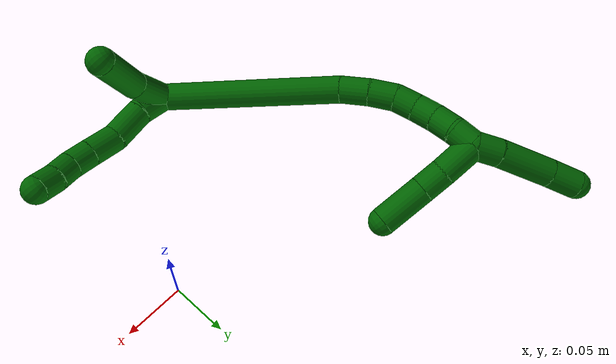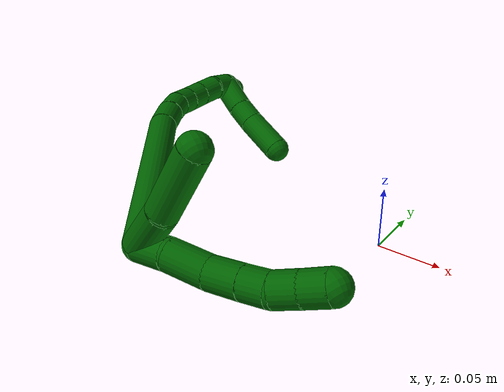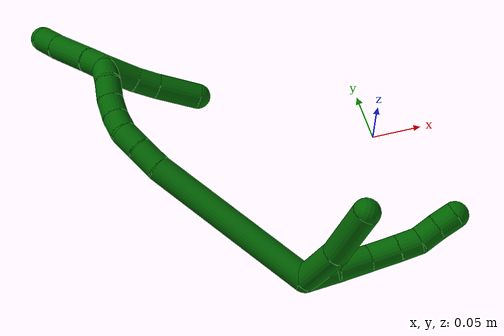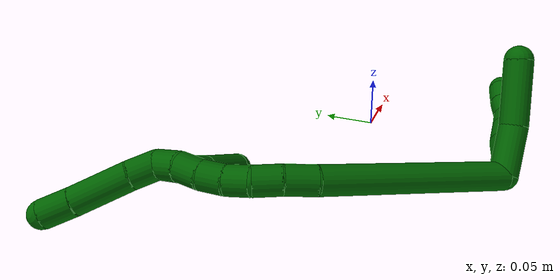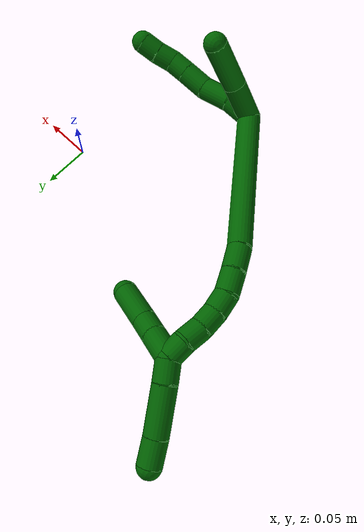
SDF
<sdf version="1.7">
 <world name="default">
  <model name="6">
   <static>0</static>
   <link name="6">
    <collision name="collision-cylinder-e_1_2_8">
     <pose>0.009299 0.002162 -0.010423 -2.93709 0.718038 -2.60782</pose>
     <geometry><cylinder><radius>0.0125</radius><length>0.028268</length></cylinder></geometry>
     <surface>
      <friction><ode><mu>1.16</mu><mu2>1.16</mu2><slip1>0</slip1><slip2>0</slip2></ode></friction>
      <contact><ode><kp>1e+06</kp><kd>1</kd><max_vel>0</max_vel><min_depth>0.001</min_depth></ode></contact>
     </surface>
    </collision>
    <visual name="visual-cylinder-e_1_2_8">
     <pose>0.009299 0.002162 -0.010423 -2.93709 0.718038 -2.60782</pose>
     <geometry><cylinder><radius>0.0125</radius><length>0.028268</length></cylinder></geometry>
     <material><ambient>0 0.392157 0.003922 1</ambient></material>
    </visual>
    <collision name="collision-cylinder-e_2_8_9">
     <pose>0.026843 0.009916 -0.034308 -2.74786 0.514719 -1.84466</pose>
     <geometry><cylinder><radius>0.0125</radius><length>0.033497</length></cylinder></geometry>
     <surface>
      <friction><ode><mu>1.16</mu><mu2>1.16</mu2><slip1>0</slip1><slip2>0</slip2></ode></friction>
      <contact><ode><kp>1e+06</kp><kd>1</kd><max_vel>0</max_vel><min_depth>0.001</min_depth></ode></contact>
     </surface>
    </collision>
    <visual name="visual-cylinder-e_2_8_9">
     <pose>0.026843 0.009916 -0.034308 -2.74786 0.514719 -1.84466</pose>
     <geometry><cylinder><radius>0.0125</radius><length>0.033497</length></cylinder></geometry>
     <material><ambient>0 0.392157 0.003922 1</ambient></material>
    </visual>
    <collision name="collision-cylinder-e_3_9_10">
     <pose>0.04459 0.017659 -0.057825 -2.93094 0.746017 -2.61388</pose>
     <geometry><cylinder><radius>0.0125</radius><length>0.027999</length></cylinder></geometry>
     <surface>
      <friction><ode><mu>1.16</mu><mu2>1.16</mu2><slip1>0</slip1><slip2>0</slip2></ode></friction>
      <contact><ode><kp>1e+06</kp><kd>1</kd><max_vel>0</max_vel><min_depth>0.001</min_depth></ode></contact>
     </surface>
    </collision>
    <visual name="visual-cylinder-e_3_9_10">
     <pose>0.04459 0.017659 -0.057825 -2.93094 0.746017 -2.61388</pose>
     <geometry><cylinder><radius>0.0125</radius><length>0.027999</length></cylinder></geometry>
     <material><ambient>0 0.392157 0.003922 1</ambient></material>
    </visual>
    <collision name="collision-cylinder-e_4_10_11">
     <pose>0.061028 0.021587 -0.075 -2.89682 0.757147 -2.54178</pose>
     <geometry><cylinder><radius>0.0125</radius><length>0.020198</length></cylinder></geometry>
     <surface>
      <friction><ode><mu>1.16</mu><mu2>1.16</mu2><slip1>0</slip1><slip2>0</slip2></ode></friction>
      <contact><ode><kp>1e+06</kp><kd>1</kd><max_vel>0</max_vel><min_depth>0.001</min_depth></ode></contact>
     </surface>
    </collision>
    <visual name="visual-cylinder-e_4_10_11">
     <pose>0.061028 0.021587 -0.075 -2.89682 0.757147 -2.54178</pose>
     <geometry><cylinder><radius>0.0125</radius><length>0.020198</length></cylinder></geometry>
     <material><ambient>0 0.392157 0.003922 1</ambient></material>
    </visual>
    <collision name="collision-cylinder-e_5_11_12">
     <pose>0.075874 0.026953 -0.087108 -2.51801 0.910446 -1.97706</pose>
     <geometry><cylinder><radius>0.0125</radius><length>0.020029</length></cylinder></geometry>
     <surface>
      <friction><ode><mu>1.16</mu><mu2>1.16</mu2><slip1>0</slip1><slip2>0</slip2></ode></friction>
      <contact><ode><kp>1e+06</kp><kd>1</kd><max_vel>0</max_vel><min_depth>0.001</min_depth></ode></contact>
     </surface>
    </collision>
    <visual name="visual-cylinder-e_5_11_12">
     <pose>0.075874 0.026953 -0.087108 -2.51801 0.910446 -1.97706</pose>
     <geometry><cylinder><radius>0.0125</radius><length>0.020029</length></cylinder></geometry>
     <material><ambient>0 0.392157 0.003922 1</ambient></material>
    </visual>
    <collision name="collision-cylinder-e_6_12_6">
     <pose>0.092146 0.033049 -0.09698 -2.66716 0.989717 -2.29919</pose>
     <geometry><cylinder><radius>0.0125</radius><length>0.020008</length></cylinder></geometry>
     <surface>
      <friction><ode><mu>1.16</mu><mu2>1.16</mu2><slip1>0</slip1><slip2>0</slip2></ode></friction>
      <contact><ode><kp>1e+06</kp><kd>1</kd><max_vel>0</max_vel><min_depth>0.001</min_depth></ode></contact>
     </surface>
    </collision>
    <visual name="visual-cylinder-e_6_12_6">
     <pose>0.092146 0.033049 -0.09698 -2.66716 0.989717 -2.29919</pose>
     <geometry><cylinder><radius>0.0125</radius><length>0.020008</length></cylinder></geometry>
     <material><ambient>0 0.392157 0.003922 1</ambient></material>
    </visual>
    <collision name="collision-cylinder-e_1_2_13">
     <pose>0.021449 -0.003569 -0.00128 1.91514 1.39583 1.74539</pose>
     <geometry><cylinder><radius>0.0125</radius><length>0.043563</length></cylinder></geometry>
     <surface>
      <friction><ode><mu>1.16</mu><mu2>1.16</mu2><slip1>0</slip1><slip2>0</slip2></ode></friction>
      <contact><ode><kp>1e+06</kp><kd>1</kd><max_vel>0</max_vel><min_depth>0.001</min_depth></ode></contact>
     </surface>
    </collision>
    <visual name="visual-cylinder-e_1_2_13">
     <pose>0.021449 -0.003569 -0.00128 1.91514 1.39583 1.74539</pose>
     <geometry><cylinder><radius>0.0125</radius><length>0.043563</length></cylinder></geometry>
     <material><ambient>0 0.392157 0.003922 1</ambient></material>
    </visual>
    <collision name="collision-cylinder-e_2_13_5">
     <pose>0.070766 -0.00998 0.000842 0.69588 1.41305 0.600416</pose>
     <geometry><cylinder><radius>0.0125</radius><length>0.056437</length></cylinder></geometry>
     <surface>
      <friction><ode><mu>1.16</mu><mu2>1.16</mu2><slip1>0</slip1><slip2>0</slip2></ode></friction>
      <contact><ode><kp>1e+06</kp><kd>1</kd><max_vel>0</max_vel><min_depth>0.001</min_depth></ode></contact>
     </surface>
    </collision>
    <visual name="visual-cylinder-e_2_13_5">
     <pose>0.070766 -0.00998 0.000842 0.69588 1.41305 0.600416</pose>
     <geometry><cylinder><radius>0.0125</radius><length>0.056437</length></cylinder></geometry>
     <material><ambient>0 0.392157 0.003922 1</ambient></material>
    </visual>
    <collision name="collision-cylinder-e_1_2_14">
     <pose>-0.008653 0.049719 0.066993 -0.638457 -0.10335 0.034188</pose>
     <geometry><cylinder><radius>0.0125</radius><length>0.167748</length></cylinder></geometry>
     <surface>
      <friction><ode><mu>1.16</mu><mu2>1.16</mu2><slip1>0</slip1><slip2>0</slip2></ode></friction>
      <contact><ode><kp>1e+06</kp><kd>1</kd><max_vel>0</max_vel><min_depth>0.001</min_depth></ode></contact>
     </surface>
    </collision>
    <visual name="visual-cylinder-e_1_2_14">
     <pose>-0.008653 0.049719 0.066993 -0.638457 -0.10335 0.034188</pose>
     <geometry><cylinder><radius>0.0125</radius><length>0.167748</length></cylinder></geometry>
     <material><ambient>0 0.392157 0.003922 1</ambient></material>
    </visual>
    <collision name="collision-cylinder-e_2_14_15">
     <pose>-0.017994 0.108816 0.143287 -0.789547 -0.052066 0.021697</pose>
     <geometry><cylinder><radius>0.0125</radius><length>0.026454</length></cylinder></geometry>
     <surface>
      <friction><ode><mu>1.16</mu><mu2>1.16</mu2><slip1>0</slip1><slip2>0</slip2></ode></friction>
      <contact><ode><kp>1e+06</kp><kd>1</kd><max_vel>0</max_vel><min_depth>0.001</min_depth></ode></contact>
     </surface>
    </collision>
    <visual name="visual-cylinder-e_2_14_15">
     <pose>-0.017994 0.108816 0.143287 -0.789547 -0.052066 0.021697</pose>
     <geometry><cylinder><radius>0.0125</radius><length>0.026454</length></cylinder></geometry>
     <material><ambient>0 0.392157 0.003922 1</ambient></material>
    </visual>
    <collision name="collision-cylinder-e_3_15_16">
     <pose>-0.019963 0.12742 0.160206 -0.880582 -0.106617 0.050268</pose>
     <geometry><cylinder><radius>0.0125</radius><length>0.024063</length></cylinder></geometry>
     <surface>
      <friction><ode><mu>1.16</mu><mu2>1.16</mu2><slip1>0</slip1><slip2>0</slip2></ode></friction>
      <contact><ode><kp>1e+06</kp><kd>1</kd><max_vel>0</max_vel><min_depth>0.001</min_depth></ode></contact>
     </surface>
    </collision>
    <visual name="visual-cylinder-e_3_15_16">
     <pose>-0.019963 0.12742 0.160206 -0.880582 -0.106617 0.050268</pose>
     <geometry><cylinder><radius>0.0125</radius><length>0.024063</length></cylinder></geometry>
     <material><ambient>0 0.392157 0.003922 1</ambient></material>
    </visual>
    <collision name="collision-cylinder-e_4_16_17">
     <pose>-0.021279 0.145963 0.171962 -1.15275 -0.003474 0.002258</pose>
     <geometry><cylinder><radius>0.0125</radius><length>0.020392</length></cylinder></geometry>
     <surface>
      <friction><ode><mu>1.16</mu><mu2>1.16</mu2><slip1>0</slip1><slip2>0</slip2></ode></friction>
      <contact><ode><kp>1e+06</kp><kd>1</kd><max_vel>0</max_vel><min_depth>0.001</min_depth></ode></contact>
     </surface>
    </collision>
    <visual name="visual-cylinder-e_4_16_17">
     <pose>-0.021279 0.145963 0.171962 -1.15275 -0.003474 0.002258</pose>
     <geometry><cylinder><radius>0.0125</radius><length>0.020392</length></cylinder></geometry>
     <material><ambient>0 0.392157 0.003922 1</ambient></material>
    </visual>
    <collision name="collision-cylinder-e_5_17_18">
     <pose>-0.019712 0.164684 0.179758 -1.19986 0.157479 -0.10784</pose>
     <geometry><cylinder><radius>0.0125</radius><length>0.02043</length></cylinder></geometry>
     <surface>
      <friction><ode><mu>1.16</mu><mu2>1.16</mu2><slip1>0</slip1><slip2>0</slip2></ode></friction>
      <contact><ode><kp>1e+06</kp><kd>1</kd><max_vel>0</max_vel><min_depth>0.001</min_depth></ode></contact>
     </surface>
    </collision>
    <visual name="visual-cylinder-e_5_17_18">
     <pose>-0.019712 0.164684 0.179758 -1.19986 0.157479 -0.10784</pose>
     <geometry><cylinder><radius>0.0125</radius><length>0.02043</length></cylinder></geometry>
     <material><ambient>0 0.392157 0.003922 1</ambient></material>
    </visual>
    <collision name="collision-cylinder-e_6_18_19">
     <pose>-0.015054 0.183666 0.186223 -1.28571 0.297135 -0.223271</pose>
     <geometry><cylinder><radius>0.0125</radius><length>0.02088</length></cylinder></geometry>
     <surface>
      <friction><ode><mu>1.16</mu><mu2>1.16</mu2><slip1>0</slip1><slip2>0</slip2></ode></friction>
      <contact><ode><kp>1e+06</kp><kd>1</kd><max_vel>0</max_vel><min_depth>0.001</min_depth></ode></contact>
     </surface>
    </collision>
    <visual name="visual-cylinder-e_6_18_19">
     <pose>-0.015054 0.183666 0.186223 -1.28571 0.297135 -0.223271</pose>
     <geometry><cylinder><radius>0.0125</radius><length>0.02088</length></cylinder></geometry>
     <material><ambient>0 0.392157 0.003922 1</ambient></material>
    </visual>
    <collision name="collision-cylinder-e_7_19_1">
     <pose>-0.011416 0.203011 0.191179 -1.35417 0.058007 -0.046634</pose>
     <geometry><cylinder><radius>0.0125</radius><length>0.020033</length></cylinder></geometry>
     <surface>
      <friction><ode><mu>1.16</mu><mu2>1.16</mu2><slip1>0</slip1><slip2>0</slip2></ode></friction>
      <contact><ode><kp>1e+06</kp><kd>1</kd><max_vel>0</max_vel><min_depth>0.001</min_depth></ode></contact>
     </surface>
    </collision>
    <visual name="visual-cylinder-e_7_19_1">
     <pose>-0.011416 0.203011 0.191179 -1.35417 0.058007 -0.046634</pose>
     <geometry><cylinder><radius>0.0125</radius><length>0.020033</length></cylinder></geometry>
     <material><ambient>0 0.392157 0.003922 1</ambient></material>
    </visual>
    <collision name="collision-cylinder-e_1_1_20">
     <pose>-0.015821 0.221211 0.19948 -0.940705 -0.445518 0.229318</pose>
     <geometry><cylinder><radius>0.0125</radius><length>0.023137</length></cylinder></geometry>
     <surface>
      <friction><ode><mu>1.16</mu><mu2>1.16</mu2><slip1>0</slip1><slip2>0</slip2></ode></friction>
      <contact><ode><kp>1e+06</kp><kd>1</kd><max_vel>0</max_vel><min_depth>0.001</min_depth></ode></contact>
     </surface>
    </collision>
    <visual name="visual-cylinder-e_1_1_20">
     <pose>-0.015821 0.221211 0.19948 -0.940705 -0.445518 0.229318</pose>
     <geometry><cylinder><radius>0.0125</radius><length>0.023137</length></cylinder></geometry>
     <material><ambient>0 0.392157 0.003922 1</ambient></material>
    </visual>
    <collision name="collision-cylinder-e_2_20_21">
     <pose>-0.032377 0.248422 0.216961 -1.02785 -0.485507 0.277794</pose>
     <geometry><cylinder><radius>0.0125</radius><length>0.049589</length></cylinder></geometry>
     <surface>
      <friction><ode><mu>1.16</mu><mu2>1.16</mu2><slip1>0</slip1><slip2>0</slip2></ode></friction>
      <contact><ode><kp>1e+06</kp><kd>1</kd><max_vel>0</max_vel><min_depth>0.001</min_depth></ode></contact>
     </surface>
    </collision>
    <visual name="visual-cylinder-e_2_20_21">
     <pose>-0.032377 0.248422 0.216961 -1.02785 -0.485507 0.277794</pose>
     <geometry><cylinder><radius>0.0125</radius><length>0.049589</length></cylinder></geometry>
     <material><ambient>0 0.392157 0.003922 1</ambient></material>
    </visual>
    <collision name="collision-cylinder-e_3_21_4">
     <pose>-0.049727 0.277991 0.234296 -1.06309 -0.437685 0.260069</pose>
     <geometry><cylinder><radius>0.0125</radius><length>0.027273</length></cylinder></geometry>
     <surface>
      <friction><ode><mu>1.16</mu><mu2>1.16</mu2><slip1>0</slip1><slip2>0</slip2></ode></friction>
      <contact><ode><kp>1e+06</kp><kd>1</kd><max_vel>0</max_vel><min_depth>0.001</min_depth></ode></contact>
     </surface>
    </collision>
    <visual name="visual-cylinder-e_3_21_4">
     <pose>-0.049727 0.277991 0.234296 -1.06309 -0.437685 0.260069</pose>
     <geometry><cylinder><radius>0.0125</radius><length>0.027273</length></cylinder></geometry>
     <material><ambient>0 0.392157 0.003922 1</ambient></material>
    </visual>
    <collision name="collision-cylinder-e_1_1_22">
     <pose>-0.011026 0.213833 0.176505 -3.07886 -0.011283 0.355787</pose>
     <geometry><cylinder><radius>0.0125</radius><length>0.033715</length></cylinder></geometry>
     <surface>
      <friction><ode><mu>1.16</mu><mu2>1.16</mu2><slip1>0</slip1><slip2>0</slip2></ode></friction>
      <contact><ode><kp>1e+06</kp><kd>1</kd><max_vel>0</max_vel><min_depth>0.001</min_depth></ode></contact>
     </surface>
    </collision>
    <visual name="visual-cylinder-e_1_1_22">
     <pose>-0.011026 0.213833 0.176505 -3.07886 -0.011283 0.355787</pose>
     <geometry><cylinder><radius>0.0125</radius><length>0.033715</length></cylinder></geometry>
     <material><ambient>0 0.392157 0.003922 1</ambient></material>
    </visual>
    <collision name="collision-cylinder-e_2_22_23">
     <pose>-0.010067 0.215319 0.148234 -3.10415 0.099955 -2.4253</pose>
     <geometry><cylinder><radius>0.0125</radius><length>0.023027</length></cylinder></geometry>
     <surface>
      <friction><ode><mu>1.16</mu><mu2>1.16</mu2><slip1>0</slip1><slip2>0</slip2></ode></friction>
      <contact><ode><kp>1e+06</kp><kd>1</kd><max_vel>0</max_vel><min_depth>0.001</min_depth></ode></contact>
     </surface>
    </collision>
    <visual name="visual-cylinder-e_2_22_23">
     <pose>-0.010067 0.215319 0.148234 -3.10415 0.099955 -2.4253</pose>
     <geometry><cylinder><radius>0.0125</radius><length>0.023027</length></cylinder></geometry>
     <material><ambient>0 0.392157 0.003922 1</ambient></material>
    </visual>
    <collision name="collision-cylinder-e_3_23_3">
     <pose>-0.005407 0.216574 0.11546 -3.10285 0.163079 -2.67606</pose>
     <geometry><cylinder><radius>0.0125</radius><length>0.043258</length></cylinder></geometry>
     <surface>
      <friction><ode><mu>1.16</mu><mu2>1.16</mu2><slip1>0</slip1><slip2>0</slip2></ode></friction>
      <contact><ode><kp>1e+06</kp><kd>1</kd><max_vel>0</max_vel><min_depth>0.001</min_depth></ode></contact>
     </surface>
    </collision>
    <visual name="visual-cylinder-e_3_23_3">
     <pose>-0.005407 0.216574 0.11546 -3.10285 0.163079 -2.67606</pose>
     <geometry><cylinder><radius>0.0125</radius><length>0.043258</length></cylinder></geometry>
     <material><ambient>0 0.392157 0.003922 1</ambient></material>
    </visual>
    <collision name="collision-sphere-3">
     <pose>-0.001895 0.217401 0.094134 0 -0 0</pose>
     <geometry><sphere><radius>0.0125</radius></sphere></geometry>
     <surface>
      <friction><ode><mu>1.16</mu><mu2>1.16</mu2><slip1>0</slip1><slip2>0</slip2></ode></friction>
      <contact><ode><kp>1e+06</kp><kd>1</kd><max_vel>0</max_vel><min_depth>0.001</min_depth></ode></contact>
     </surface>
    </collision>
    <visual name="visual-sphere-3">
     <pose>-0.001895 0.217401 0.094134 0 -0 0</pose>
     <geometry><sphere><radius>0.0125</radius></sphere></geometry>
     <material><ambient>0 0.392157 0.003922 1</ambient></material>
    </visual>
    <collision name="collision-sphere-23">
     <pose>-0.008918 0.215748 0.136786 0 -0 0</pose>
     <geometry><sphere><radius>0.0125</radius></sphere></geometry>
     <surface>
      <friction><ode><mu>1.16</mu><mu2>1.16</mu2><slip1>0</slip1><slip2>0</slip2></ode></friction>
      <contact><ode><kp>1e+06</kp><kd>1</kd><max_vel>0</max_vel><min_depth>0.001</min_depth></ode></contact>
     </surface>
    </collision>
    <visual name="visual-sphere-23">
     <pose>-0.008918 0.215748 0.136786 0 -0 0</pose>
     <geometry><sphere><radius>0.0125</radius></sphere></geometry>
     <material><ambient>0 0.392157 0.003922 1</ambient></material>
    </visual>
    <collision name="collision-sphere-22">
     <pose>-0.011216 0.21489 0.159682 0 -0 0</pose>
     <geometry><sphere><radius>0.0125</radius></sphere></geometry>
     <surface>
      <friction><ode><mu>1.16</mu><mu2>1.16</mu2><slip1>0</slip1><slip2>0</slip2></ode></friction>
      <contact><ode><kp>1e+06</kp><kd>1</kd><max_vel>0</max_vel><min_depth>0.001</min_depth></ode></contact>
     </surface>
    </collision>
    <visual name="visual-sphere-22">
     <pose>-0.011216 0.21489 0.159682 0 -0 0</pose>
     <geometry><sphere><radius>0.0125</radius></sphere></geometry>
     <material><ambient>0 0.392157 0.003922 1</ambient></material>
    </visual>
    <collision name="collision-sphere-4">
     <pose>-0.055507 0.288784 0.240301 0 -0 0</pose>
     <geometry><sphere><radius>0.0125</radius></sphere></geometry>
     <surface>
      <friction><ode><mu>1.16</mu><mu2>1.16</mu2><slip1>0</slip1><slip2>0</slip2></ode></friction>
      <contact><ode><kp>1e+06</kp><kd>1</kd><max_vel>0</max_vel><min_depth>0.001</min_depth></ode></contact>
     </surface>
    </collision>
    <visual name="visual-sphere-4">
     <pose>-0.055507 0.288784 0.240301 0 -0 0</pose>
     <geometry><sphere><radius>0.0125</radius></sphere></geometry>
     <material><ambient>0 0.392157 0.003922 1</ambient></material>
    </visual>
    <collision name="collision-sphere-21">
     <pose>-0.043947 0.267198 0.228291 0 -0 0</pose>
     <geometry><sphere><radius>0.0125</radius></sphere></geometry>
     <surface>
      <friction><ode><mu>1.16</mu><mu2>1.16</mu2><slip1>0</slip1><slip2>0</slip2></ode></friction>
      <contact><ode><kp>1e+06</kp><kd>1</kd><max_vel>0</max_vel><min_depth>0.001</min_depth></ode></contact>
     </surface>
    </collision>
    <visual name="visual-sphere-21">
     <pose>-0.043947 0.267198 0.228291 0 -0 0</pose>
     <geometry><sphere><radius>0.0125</radius></sphere></geometry>
     <material><ambient>0 0.392157 0.003922 1</ambient></material>
    </visual>
    <collision name="collision-sphere-20">
     <pose>-0.020806 0.229646 0.205631 0 -0 0</pose>
     <geometry><sphere><radius>0.0125</radius></sphere></geometry>
     <surface>
      <friction><ode><mu>1.16</mu><mu2>1.16</mu2><slip1>0</slip1><slip2>0</slip2></ode></friction>
      <contact><ode><kp>1e+06</kp><kd>1</kd><max_vel>0</max_vel><min_depth>0.001</min_depth></ode></contact>
     </surface>
    </collision>
    <visual name="visual-sphere-20">
     <pose>-0.020806 0.229646 0.205631 0 -0 0</pose>
     <geometry><sphere><radius>0.0125</radius></sphere></geometry>
     <material><ambient>0 0.392157 0.003922 1</ambient></material>
    </visual>
    <collision name="collision-sphere-12">
     <pose>0.083783 0.03054 -0.092095 0 -0 0</pose>
     <geometry><sphere><radius>0.0125</radius></sphere></geometry>
     <surface>
      <friction><ode><mu>1.16</mu><mu2>1.16</mu2><slip1>0</slip1><slip2>0</slip2></ode></friction>
      <contact><ode><kp>1e+06</kp><kd>1</kd><max_vel>0</max_vel><min_depth>0.001</min_depth></ode></contact>
     </surface>
    </collision>
    <visual name="visual-sphere-12">
     <pose>0.083783 0.03054 -0.092095 0 -0 0</pose>
     <geometry><sphere><radius>0.0125</radius></sphere></geometry>
     <material><ambient>0 0.392157 0.003922 1</ambient></material>
    </visual>
    <collision name="collision-sphere-11">
     <pose>0.067965 0.023366 -0.082122 0 -0 0</pose>
     <geometry><sphere><radius>0.0125</radius></sphere></geometry>
     <surface>
      <friction><ode><mu>1.16</mu><mu2>1.16</mu2><slip1>0</slip1><slip2>0</slip2></ode></friction>
      <contact><ode><kp>1e+06</kp><kd>1</kd><max_vel>0</max_vel><min_depth>0.001</min_depth></ode></contact>
     </surface>
    </collision>
    <visual name="visual-sphere-11">
     <pose>0.067965 0.023366 -0.082122 0 -0 0</pose>
     <geometry><sphere><radius>0.0125</radius></sphere></geometry>
     <material><ambient>0 0.392157 0.003922 1</ambient></material>
    </visual>
    <collision name="collision-sphere-10">
     <pose>0.054092 0.019809 -0.067879 0 -0 0</pose>
     <geometry><sphere><radius>0.0125</radius></sphere></geometry>
     <surface>
      <friction><ode><mu>1.16</mu><mu2>1.16</mu2><slip1>0</slip1><slip2>0</slip2></ode></friction>
      <contact><ode><kp>1e+06</kp><kd>1</kd><max_vel>0</max_vel><min_depth>0.001</min_depth></ode></contact>
     </surface>
    </collision>
    <visual name="visual-sphere-10">
     <pose>0.054092 0.019809 -0.067879 0 -0 0</pose>
     <geometry><sphere><radius>0.0125</radius></sphere></geometry>
     <material><ambient>0 0.392157 0.003922 1</ambient></material>
    </visual>
    <collision name="collision-sphere-9">
     <pose>0.035088 0.015509 -0.047771 0 -0 0</pose>
     <geometry><sphere><radius>0.0125</radius></sphere></geometry>
     <surface>
      <friction><ode><mu>1.16</mu><mu2>1.16</mu2><slip1>0</slip1><slip2>0</slip2></ode></friction>
      <contact><ode><kp>1e+06</kp><kd>1</kd><max_vel>0</max_vel><min_depth>0.001</min_depth></ode></contact>
     </surface>
    </collision>
    <visual name="visual-sphere-9">
     <pose>0.035088 0.015509 -0.047771 0 -0 0</pose>
     <geometry><sphere><radius>0.0125</radius></sphere></geometry>
     <material><ambient>0 0.392157 0.003922 1</ambient></material>
    </visual>
    <collision name="collision-sphere-2">
     <geometry><sphere><radius>0.0125</radius></sphere></geometry>
     <surface>
      <friction><ode><mu>1.16</mu><mu2>1.16</mu2><slip1>0</slip1><slip2>0</slip2></ode></friction>
      <contact><ode><kp>1e+06</kp><kd>1</kd><max_vel>0</max_vel><min_depth>0.001</min_depth></ode></contact>
     </surface>
    </collision>
    <visual name="visual-sphere-2">
     <geometry><sphere><radius>0.0125</radius></sphere></geometry>
     <material><ambient>0 0.392157 0.003922 1</ambient></material>
    </visual>
    <collision name="collision-sphere-19">
     <pose>-0.011997 0.193245 0.18903 0 -0 0</pose>
     <geometry><sphere><radius>0.0125</radius></sphere></geometry>
     <surface>
      <friction><ode><mu>1.16</mu><mu2>1.16</mu2><slip1>0</slip1><slip2>0</slip2></ode></friction>
      <contact><ode><kp>1e+06</kp><kd>1</kd><max_vel>0</max_vel><min_depth>0.001</min_depth></ode></contact>
     </surface>
    </collision>
    <visual name="visual-sphere-19">
     <pose>-0.011997 0.193245 0.18903 0 -0 0</pose>
     <geometry><sphere><radius>0.0125</radius></sphere></geometry>
     <material><ambient>0 0.392157 0.003922 1</ambient></material>
    </visual>
    <collision name="collision-sphere-8">
     <pose>0.018598 0.004323 -0.020845 0 -0 0</pose>
     <geometry><sphere><radius>0.0125</radius></sphere></geometry>
     <surface>
      <friction><ode><mu>1.16</mu><mu2>1.16</mu2><slip1>0</slip1><slip2>0</slip2></ode></friction>
      <contact><ode><kp>1e+06</kp><kd>1</kd><max_vel>0</max_vel><min_depth>0.001</min_depth></ode></contact>
     </surface>
    </collision>
    <visual name="visual-sphere-8">
     <pose>0.018598 0.004323 -0.020845 0 -0 0</pose>
     <geometry><sphere><radius>0.0125</radius></sphere></geometry>
     <material><ambient>0 0.392157 0.003922 1</ambient></material>
    </visual>
    <collision name="collision-sphere-6">
     <pose>0.100508 0.035558 -0.101865 0 -0 0</pose>
     <geometry><sphere><radius>0.0125</radius></sphere></geometry>
     <surface>
      <friction><ode><mu>1.16</mu><mu2>1.16</mu2><slip1>0</slip1><slip2>0</slip2></ode></friction>
      <contact><ode><kp>1e+06</kp><kd>1</kd><max_vel>0</max_vel><min_depth>0.001</min_depth></ode></contact>
     </surface>
    </collision>
    <visual name="visual-sphere-6">
     <pose>0.100508 0.035558 -0.101865 0 -0 0</pose>
     <geometry><sphere><radius>0.0125</radius></sphere></geometry>
     <material><ambient>0 0.392157 0.003922 1</ambient></material>
    </visual>
    <collision name="collision-sphere-13">
     <pose>0.042898 -0.007138 -0.00256 0 -0 0</pose>
     <geometry><sphere><radius>0.0125</radius></sphere></geometry>
     <surface>
      <friction><ode><mu>1.16</mu><mu2>1.16</mu2><slip1>0</slip1><slip2>0</slip2></ode></friction>
      <contact><ode><kp>1e+06</kp><kd>1</kd><max_vel>0</max_vel><min_depth>0.001</min_depth></ode></contact>
     </surface>
    </collision>
    <visual name="visual-sphere-13">
     <pose>0.042898 -0.007138 -0.00256 0 -0 0</pose>
     <geometry><sphere><radius>0.0125</radius></sphere></geometry>
     <material><ambient>0 0.392157 0.003922 1</ambient></material>
    </visual>
    <collision name="collision-sphere-5">
     <pose>0.098634 -0.012821 0.004244 0 -0 0</pose>
     <geometry><sphere><radius>0.0125</radius></sphere></geometry>
     <surface>
      <friction><ode><mu>1.16</mu><mu2>1.16</mu2><slip1>0</slip1><slip2>0</slip2></ode></friction>
      <contact><ode><kp>1e+06</kp><kd>1</kd><max_vel>0</max_vel><min_depth>0.001</min_depth></ode></contact>
     </surface>
    </collision>
    <visual name="visual-sphere-5">
     <pose>0.098634 -0.012821 0.004244 0 -0 0</pose>
     <geometry><sphere><radius>0.0125</radius></sphere></geometry>
     <material><ambient>0 0.392157 0.003922 1</ambient></material>
    </visual>
    <collision name="collision-sphere-14">
     <pose>-0.017306 0.099437 0.133985 0 -0 0</pose>
     <geometry><sphere><radius>0.0125</radius></sphere></geometry>
     <surface>
      <friction><ode><mu>1.16</mu><mu2>1.16</mu2><slip1>0</slip1><slip2>0</slip2></ode></friction>
      <contact><ode><kp>1e+06</kp><kd>1</kd><max_vel>0</max_vel><min_depth>0.001</min_depth></ode></contact>
     </surface>
    </collision>
    <visual name="visual-sphere-14">
     <pose>-0.017306 0.099437 0.133985 0 -0 0</pose>
     <geometry><sphere><radius>0.0125</radius></sphere></geometry>
     <material><ambient>0 0.392157 0.003922 1</ambient></material>
    </visual>
    <collision name="collision-sphere-15">
     <pose>-0.018683 0.118195 0.152589 0 -0 0</pose>
     <geometry><sphere><radius>0.0125</radius></sphere></geometry>
     <surface>
      <friction><ode><mu>1.16</mu><mu2>1.16</mu2><slip1>0</slip1><slip2>0</slip2></ode></friction>
      <contact><ode><kp>1e+06</kp><kd>1</kd><max_vel>0</max_vel><min_depth>0.001</min_depth></ode></contact>
     </surface>
    </collision>
    <visual name="visual-sphere-15">
     <pose>-0.018683 0.118195 0.152589 0 -0 0</pose>
     <geometry><sphere><radius>0.0125</radius></sphere></geometry>
     <material><ambient>0 0.392157 0.003922 1</ambient></material>
    </visual>
    <collision name="collision-sphere-16">
     <pose>-0.021243 0.136645 0.167823 0 -0 0</pose>
     <geometry><sphere><radius>0.0125</radius></sphere></geometry>
     <surface>
      <friction><ode><mu>1.16</mu><mu2>1.16</mu2><slip1>0</slip1><slip2>0</slip2></ode></friction>
      <contact><ode><kp>1e+06</kp><kd>1</kd><max_vel>0</max_vel><min_depth>0.001</min_depth></ode></contact>
     </surface>
    </collision>
    <visual name="visual-sphere-16">
     <pose>-0.021243 0.136645 0.167823 0 -0 0</pose>
     <geometry><sphere><radius>0.0125</radius></sphere></geometry>
     <material><ambient>0 0.392157 0.003922 1</ambient></material>
    </visual>
    <collision name="collision-sphere-17">
     <pose>-0.021314 0.155281 0.176101 0 -0 0</pose>
     <geometry><sphere><radius>0.0125</radius></sphere></geometry>
     <surface>
      <friction><ode><mu>1.16</mu><mu2>1.16</mu2><slip1>0</slip1><slip2>0</slip2></ode></friction>
      <contact><ode><kp>1e+06</kp><kd>1</kd><max_vel>0</max_vel><min_depth>0.001</min_depth></ode></contact>
     </surface>
    </collision>
    <visual name="visual-sphere-17">
     <pose>-0.021314 0.155281 0.176101 0 -0 0</pose>
     <geometry><sphere><radius>0.0125</radius></sphere></geometry>
     <material><ambient>0 0.392157 0.003922 1</ambient></material>
    </visual>
    <collision name="collision-sphere-18">
     <pose>-0.01811 0.174086 0.183415 0 -0 0</pose>
     <geometry><sphere><radius>0.0125</radius></sphere></geometry>
     <surface>
      <friction><ode><mu>1.16</mu><mu2>1.16</mu2><slip1>0</slip1><slip2>0</slip2></ode></friction>
      <contact><ode><kp>1e+06</kp><kd>1</kd><max_vel>0</max_vel><min_depth>0.001</min_depth></ode></contact>
     </surface>
    </collision>
    <visual name="visual-sphere-18">
     <pose>-0.01811 0.174086 0.183415 0 -0 0</pose>
     <geometry><sphere><radius>0.0125</radius></sphere></geometry>
     <material><ambient>0 0.392157 0.003922 1</ambient></material>
    </visual>
    <collision name="collision-sphere-1">
     <pose>-0.010836 0.212777 0.193329 0 -0 0</pose>
     <geometry><sphere><radius>0.0125</radius></sphere></geometry>
     <surface>
      <friction><ode><mu>1.16</mu><mu2>1.16</mu2><slip1>0</slip1><slip2>0</slip2></ode></friction>
      <contact><ode><kp>1e+06</kp><kd>1</kd><max_vel>0</max_vel><min_depth>0.001</min_depth></ode></contact>
     </surface>
    </collision>
    <visual name="visual-sphere-1">
     <pose>-0.010836 0.212777 0.193329 0 -0 0</pose>
     <geometry><sphere><radius>0.0125</radius></sphere></geometry>
     <material><ambient>0 0.392157 0.003922 1</ambient></material>
    </visual>
    <inertial>
     <pose>0.005309 0.102519 0.082177 0 -0 0</pose>
     <mass>0.75</mass>
     <inertia>
      <ixx>0.000434</ixx>
      <ixy>0</ixy>
      <ixz>0</ixz>
      <iyy>0.000412</iyy>
      <iyz>0</iyz>
      <izz>-0.000245</izz>
     </inertia>
    </inertial>
   </link>
   <pose>-0.116097 -0.147213 0.030454 -0.532305 -0.938234 0.265255</pose>
  </model>
 </world>
</sdf>
